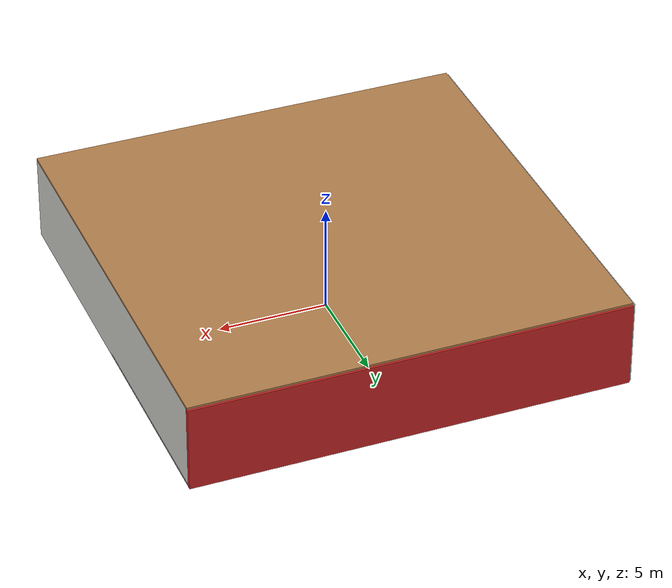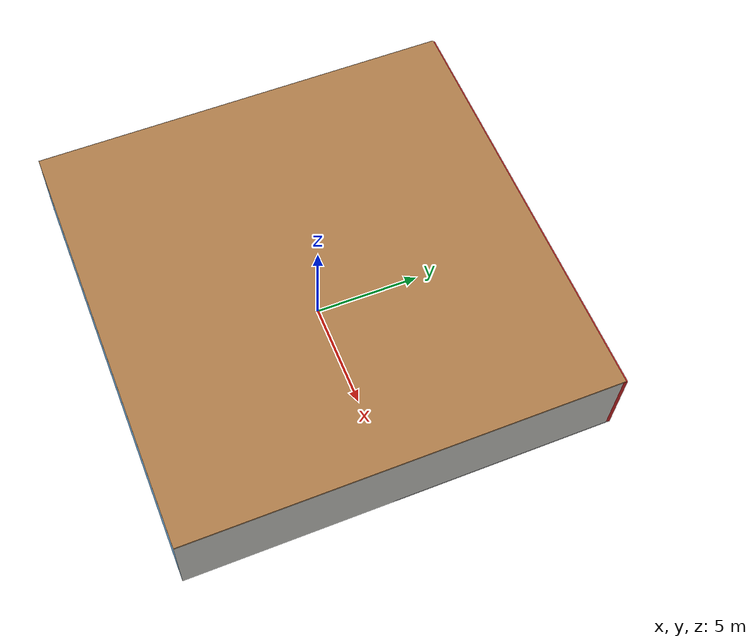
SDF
<sdf version="1.4">
 <world name="default">
  <physics type="ode">
   <max_step_size>0.001</max_step_size>
   <real_time_factor>1</real_time_factor>
   <real_time_update_rate>1000</real_time_update_rate>
   <gravity>0 0 -9.8</gravity>
  </physics>
  <scene><ambient>0.4 0.4 0.4 1</ambient><background>0.7 0.7 0.7 1</background><shadows>1</shadows></scene>
  <model name="Surrounding">
   <static>1</static>
   <link name="Ceiling">
    <collision name="Ceiling_Collision"><geometry><box><size>20 20 0.1</size></box></geometry></collision>
    <visual name="Ceiling_Visual">
     <geometry><box><size>20 20 0.1</size></box></geometry>
     <material>
      <script><uri>file://media/materials/scripts/gazebo.material</uri><name>Gazebo/WoodPallet</name></script>
     </material>
    </visual>
    <pose>0 0 4.05 0 0 0</pose>
   </link>
   <link name="Wall_South">
    <collision name="Wall_South_Collision">
     <geometry><box><size>20 0 4</size></box></geometry>
     <pose>0 0 2 0 -0 0</pose>
    </collision>
    <visual name="Wall_South_Visual">
     <pose>0 0 2 0 -0 0</pose>
     <geometry><box><size>20 0 4</size></box></geometry>
     <material>
      <script><uri>file://media/materials/scripts/gazebo.material</uri><name>Gazebo/SkyBlue</name></script>
     </material>
    </visual>
    <velocity_decay><linear>0</linear><angular>0</angular></velocity_decay>
    <pose>0 -10 0 0 -0 0</pose>
   </link>
   <link name="Wall_East">
    <collision name="Wall_21_Collision">
     <geometry><box><size>20 0 4</size></box></geometry>
     <pose>0 0 2 0 -0 0</pose>
    </collision>
    <visual name="Wall_21_Visual">
     <pose>0 0 2 0 -0 0</pose>
     <geometry><box><size>20 0 4</size></box></geometry>
     <material>
      <script><uri>file://media/materials/scripts/gazebo.material</uri><name>Gazebo/CeilingTiled</name></script>
     </material>
    </visual>
    <velocity_decay><linear>0</linear><angular>0</angular></velocity_decay>
    <pose>10 0 0 0 -0 1.5708</pose>
   </link>
   <link name="Wall_North">
    <collision name="Wall_22_Collision">
     <geometry><box><size>20 0.2 4</size></box></geometry>
     <pose>0 0 2 0 -0 0</pose>
    </collision>
    <visual name="Wall_22_Visual">
     <pose>0 0 2 0 -0 0</pose>
     <geometry><box><size>20 0.2 4</size></box></geometry>
     <material>
      <script><uri>file://media/materials/scripts/gazebo.material</uri><name>Gazebo/RedGlow</name></script>
     </material>
    </visual>
    <velocity_decay><linear>0</linear><angular>0</angular></velocity_decay>
    <pose>0 10 0 0 -0 0</pose>
   </link>
   <link name="Wall_West">
    <collision name="Wall_23_Collision">
     <geometry><box><size>20 0.2 4</size></box></geometry>
     <pose>0 0 2 0 -0 0</pose>
    </collision>
    <visual name="Wall_23_Visual">
     <pose>0 0 2 0 -0 0</pose>
     <geometry><box><size>20 0.2 4</size></box></geometry>
     <material>
      <script><uri>file://media/materials/scripts/gazebo.material</uri><name>Gazebo/Pioneer2Body</name></script>
     </material>
    </visual>
    <velocity_decay><linear>0</linear><angular>0</angular></velocity_decay>
    <pose>-10 0 0 0 0 -1.5708</pose>
   </link>
   <link name="Ground_link">
    <collision name="collision">
     <pose>0 0 .05 0 -0 0</pose>
     <geometry><box><size>20 20 0.1</size></box></geometry>
    </collision>
    <visual name="visual">
     <pose>0 0 .05 0 -0 0</pose>
     <geometry><box><size>20 20 0.1</size></box></geometry>
     <material>
      <script><uri>file://media/materials/scripts/gazebo.material</uri><name>Gazebo/FlatBlack</name></script>
     </material>
    </visual>
   </link>
   <static>1</static>
  </model>
  <spherical_coordinates>
   <surface_model>EARTH_WGS84</surface_model>
   <latitude_deg>0</latitude_deg>
   <longitude_deg>0</longitude_deg>
   <elevation>0</elevation>
   <heading_deg>0</heading_deg>
  </spherical_coordinates>
  <light name="lightball_0" type="diffuse">
   <diffuse>0.8 0.8 0.8 1</diffuse>
   <specular>0.2 0.2 0.2 1</specular>
   <attenuation>
    <range>100</range>
    <constant>0.7</constant>
    <linear>0.01</linear>
    <quadratic>0.001</quadratic>
   </attenuation>
   <direction>-0.5 0.1 -0.9</direction>
   <pose>-1.30517044287 5.39335768544 2.71936536785 0 0 0</pose>
  </light>
  <light name="lightball_1" type="diffuse">
   <diffuse>0.8 0.8 0.8 1</diffuse>
   <specular>0.2 0.2 0.2 1</specular>
   <attenuation>
    <range>100</range>
    <constant>0.7</constant>
    <linear>0.01</linear>
    <quadratic>0.001</quadratic>
   </attenuation>
   <direction>-0.5 0.1 -0.9</direction>
   <pose>5.10721324461 1.65810136855 3.15197757252 0 0 0</pose>
  </light>
  <light name="lightball_2" type="diffuse">
   <diffuse>0.8 0.8 0.8 1</diffuse>
   <specular>0.2 0.2 0.2 1</specular>
   <attenuation>
    <range>100</range>
    <constant>0.7</constant>
    <linear>0.01</linear>
    <quadratic>0.001</quadratic>
   </attenuation>
   <direction>-0.5 0.1 -0.9</direction>
   <pose>-5.5797378693 -7.23153667387 1.89212235658 0 0 0</pose>
  </light>
  <light name="lightball_3" type="diffuse">
   <diffuse>0.8 0.8 0.8 1</diffuse>
   <specular>0.2 0.2 0.2 1</specular>
   <attenuation>
    <range>100</range>
    <constant>0.7</constant>
    <linear>0.01</linear>
    <quadratic>0.001</quadratic>
   </attenuation>
   <direction>-0.5 0.1 -0.9</direction>
   <pose>1.7280788027 6.2868799436 2.3721704316 0 0 0</pose>
  </light>
  <light name="lightball_4" type="diffuse">
   <diffuse>0.8 0.8 0.8 1</diffuse>
   <specular>0.2 0.2 0.2 1</specular>
   <attenuation>
    <range>100</range>
    <constant>0.7</constant>
    <linear>0.01</linear>
    <quadratic>0.001</quadratic>
   </attenuation>
   <direction>-0.5 0.1 -0.9</direction>
   <pose>0.897374109227 1.88057798072 1.86828746551 0 0 0</pose>
  </light>
  <light name="lightball_5" type="diffuse">
   <diffuse>0.8 0.8 0.8 1</diffuse>
   <specular>0.2 0.2 0.2 1</specular>
   <attenuation>
    <range>100</range>
    <constant>0.7</constant>
    <linear>0.01</linear>
    <quadratic>0.001</quadratic>
   </attenuation>
   <direction>-0.5 0.1 -0.9</direction>
   <pose>7.62526136732 -8.97803075128 2.84539219873 0 0 0</pose>
  </light>
  <light name="lightball_6" type="diffuse">
   <diffuse>0.8 0.8 0.8 1</diffuse>
   <specular>0.2 0.2 0.2 1</specular>
   <attenuation>
    <range>100</range>
    <constant>0.7</constant>
    <linear>0.01</linear>
    <quadratic>0.001</quadratic>
   </attenuation>
   <direction>-0.5 0.1 -0.9</direction>
   <pose>-2.97698209907 0.296606696852 1.8621144998 0 0 0</pose>
  </light>
  <light name="lightball_7" type="diffuse">
   <diffuse>0.8 0.8 0.8 1</diffuse>
   <specular>0.2 0.2 0.2 1</specular>
   <attenuation>
    <range>100</range>
    <constant>0.7</constant>
    <linear>0.01</linear>
    <quadratic>0.001</quadratic>
   </attenuation>
   <direction>-0.5 0.1 -0.9</direction>
   <pose>9.89245614419 3.65339087445 2.88866709849 0 0 0</pose>
  </light>
  <include><uri>model://table</uri><pose>-2.41220694267 6.83701505395 0 0 0 1.02486689538</pose></include>
  <include>
   <uri>model://construction_cone</uri>
   <pose>1.68968052481 1.71481911012 0 0 0 1.04915119451</pose>
  </include>
  <include>
   <uri>model://construction_cone</uri>
   <pose>1.66141971583 7.10503624542 0 0 0 2.95412350021</pose>
  </include>
  <include>
   <uri>model://robocup_3Dsim_goal</uri>
   <pose>4.65334208181 -1.45389704273 0 0 0 0.593611477301</pose>
  </include>
  <include><uri>model://textured_shapes</uri><pose>5.53199683858 5.045384437 0 0 0 3.1031015443</pose></include>
  <include><uri>model://table</uri><pose>4.61485149924 7.30000941195 0 0 0 0.572846139543</pose></include>
 </world>
</sdf>

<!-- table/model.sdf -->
<sdf version="1.5">
  <model name="table">
    <static>true</static>
    <link name="link">
      <collision name="surface">
        <pose>0 0 1.0 0 0 0</pose>
        <geometry>
          <box>
            <size>1.5 0.8 0.03</size>
          </box>
        </geometry>
        <surface>
          <friction>
            <ode>
              <mu>0.6</mu>
              <mu2>0.6</mu2>
            </ode>
          </friction>
        </surface>
      </collision>
      <visual name="visual1">
        <pose>0 0 1.0 0 0 0</pose>
        <geometry>
          <box>
            <size>1.5 0.8 0.03</size>
          </box>
        </geometry>
        <material>
          <script>
            <uri>model://media/materials/scripts/gazebo.material</uri>
            <name>Gazebo/Wood</name>
          </script>
        </material>
      </visual>
      <collision name="front_left_leg">
        <pose>0.68 0.38 0.5 0 0 0</pose>
        <geometry>
          <cylinder>
            <radius>0.02</radius>
            <length>1.0</length>
          </cylinder>
        </geometry>
      </collision>
      <visual name="front_left_leg">
        <pose>0.68 0.38 0.5 0 0 0</pose>
        <geometry>
          <cylinder>
            <radius>0.02</radius>
            <length>1.0</length>
          </cylinder>
        </geometry>
        <material>
          <script>
            <uri>model://media/materials/scripts/gazebo.material</uri>
            <name>Gazebo/Grey</name>
          </script>
        </material>
      </visual>
      <collision name="front_right_leg">
        <pose>0.68 -0.38 0.5 0 0 0</pose>
        <geometry>
          <cylinder>
            <radius>0.02</radius>
            <length>1.0</length>
          </cylinder>
        </geometry>
      </collision>
      <visual name="front_right_leg">
        <pose>0.68 -0.38 0.5 0 0 0</pose>
        <geometry>
          <cylinder>
            <radius>0.02</radius>
            <length>1.0</length>
          </cylinder>
        </geometry>
        <material>
          <script>
            <uri>model://media/materials/scripts/gazebo.material</uri>
            <name>Gazebo/Grey</name>
          </script>
        </material>
      </visual>
      <collision name="back_right_leg">
        <pose>-0.68 -0.38 0.5 0 0 0</pose>
        <geometry>
          <cylinder>
            <radius>0.02</radius>
            <length>1.0</length>
          </cylinder>
        </geometry>
      </collision>
      <visual name="back_right_leg">
        <pose>-0.68 -0.38 0.5 0 0 0</pose>
        <geometry>
          <cylinder>
            <radius>0.02</radius>
            <length>1.0</length>
          </cylinder>
        </geometry>
        <material>
          <script>
            <uri>model://media/materials/scripts/gazebo.material</uri>
            <name>Gazebo/Grey</name>
          </script>
        </material>
      </visual>
      <collision name="back_left_leg">
        <pose>-0.68 0.38 0.5 0 0 0</pose>
        <geometry>
          <cylinder>
            <radius>0.02</radius>
            <length>1.0</length>
          </cylinder>
        </geometry>
      </collision>
      <visual name="back_left_leg">
        <pose>-0.68 0.38 0.5 0 0 0</pose>
        <geometry>
          <cylinder>
            <radius>0.02</radius>
            <length>1.0</length>
          </cylinder>
        </geometry>
        <material>
          <script>
            <uri>model://media/materials/scripts/gazebo.material</uri>
            <name>Gazebo/Grey</name>
          </script>
        </material>
      </visual>
    </link>
  </model>
</sdf>

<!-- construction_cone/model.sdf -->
<sdf version="1.5">
  <model name="Construction Cone">
    <link name="link">
      <collision name="collision">
        <geometry>
          <mesh>
            <scale>10 10 10</scale>
            <uri>file://isr-testbed/construction_cone/meshes/construction_cone.dae</uri>
          </mesh>
        </geometry>
      </collision>
      <visual name="visual">
        <geometry>
          <mesh>
            <scale>10 10 10</scale>
            <uri>file://isr-testbed/construction_cone/meshes/construction_cone.dae</uri>
          </mesh>
        </geometry>
      </visual>
    </link>
  </model>
</sdf>

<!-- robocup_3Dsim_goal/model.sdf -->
<sdf version="1.5">
  <model name="robocup_3d_goal">
    <static>true</static>
    <link name="left_post">
      <pose>0 1.05 0.45 0 0 0</pose>
      <collision name="collision">
        <geometry>
          <cylinder>
            <radius>0.05</radius>
            <length>0.9</length>
          </cylinder>
        </geometry>
      </collision>
      <visual name="visual">
        <geometry>
          <cylinder>
            <radius>0.05</radius>
            <length>0.9</length>
          </cylinder>
        </geometry>
        <material>
          <script>
            <uri>file://media/materials/scripts/gazebo.material</uri>
            <name>Gazebo/ZincYellow</name>
          </script>
        </material>
      </visual>
    </link>
    <link name="left_support_horiz_lower">
      <pose>0.30 1.05 0.01 0 0 0</pose>
      <collision name="collision">
        <geometry>
          <box>
            <size>0.50 0.02 0.02</size>
          </box>
        </geometry>
      </collision>
      <visual name="visual">
        <geometry>
          <box>
            <size>0.50 0.02 0.02</size>
          </box>
        </geometry>
        <material>
          <script>
            <uri>file://media/materials/scripts/gazebo.material</uri>
            <name>Gazebo/White</name>
          </script>
        </material>
      </visual>
    </link>
    <link name="left_support_horiz_upper">
      <pose>0.30 1.05 0.79 0 0 0</pose>
      <collision name="collision">
        <geometry>
          <box>
            <size>0.50 0.02 0.02</size>
          </box>
        </geometry>
      </collision>
      <visual name="visual">
        <geometry>
          <box>
            <size>0.50 0.02 0.02</size>
          </box>
        </geometry>
        <material>
          <script>
            <uri>file://media/materials/scripts/gazebo.material</uri>
            <name>Gazebo/White</name>
          </script>
        </material>
      </visual>
    </link>
    <link name="left_support_vertical">
      <pose>0.56 1.05 0.4 0 1.5708 0</pose>
      <collision name="collision">
        <geometry>
          <box>
            <size>0.80 0.02 0.02</size>
          </box>
        </geometry>
      </collision>
      <visual name="visual">
        <geometry>
          <box>
            <size>0.80 0.02 0.02</size>
          </box>
        </geometry>
        <material>
          <script>
            <uri>file://media/materials/scripts/gazebo.material</uri>
            <name>Gazebo/White</name>
          </script>
        </material>
      </visual>
    </link>
    <link name="right_support_horiz_lower">
      <pose>0.30 -1.05 0.01 0 0 0</pose>
      <collision name="collision">
        <geometry>
          <box>
            <size>0.50 0.02 0.02</size>
          </box>
        </geometry>
      </collision>
      <visual name="visual">
        <geometry>
          <box>
            <size>0.50 0.02 0.02</size>
          </box>
        </geometry>
        <material>
          <script>
            <uri>file://media/materials/scripts/gazebo.material</uri>
            <name>Gazebo/White</name>
          </script>
        </material>
      </visual>
    </link>
    <link name="right_support_horiz_upper">
      <pose>0.30 -1.05 0.79 0 0 0</pose>
      <collision name="collision">
        <geometry>
          <box>
            <size>0.50 0.02 0.02</size>
          </box>
        </geometry>
      </collision>
      <visual name="visual">
        <geometry>
          <box>
            <size>0.50 0.02 0.02</size>
          </box>
        </geometry>
        <material>
          <script>
            <uri>file://media/materials/scripts/gazebo.material</uri>
            <name>Gazebo/White</name>
          </script>
        </material>
      </visual>
    </link>
    <link name="right_support_vertical">
      <pose>0.56 -1.05 0.4 0 1.5708 0</pose>
      <collision name="collision">
        <geometry>
          <box>
            <size>0.80 0.02 0.02</size>
          </box>
        </geometry>
      </collision>
      <visual name="visual">
        <geometry>
          <box>
            <size>0.80 0.02 0.02</size>
          </box>
        </geometry>
        <material>
          <script>
            <uri>file://media/materials/scripts/gazebo.material</uri>
            <name>Gazebo/White</name>
          </script>
        </material>
      </visual>
    </link>
    <link name="center_support_horiz_lower">
      <pose>0.56 0 0.01 0 1.5708 0</pose>
      <collision name="collision">
        <geometry>
          <box>
            <size>0.02 2.08 0.02</size>
          </box>
        </geometry>
      </collision>
      <visual name="visual">
        <geometry>
          <box>
            <size>0.02 2.08 0.02</size>
          </box>
        </geometry>
        <material>
          <script>
            <uri>file://media/materials/scripts/gazebo.material</uri>
            <name>Gazebo/White</name>
          </script>
        </material>
      </visual>
    </link>
    <link name="center_support_horiz_upper">
      <pose>0.56 0 0.79 0 1.5708 0</pose>
      <collision name="collision">
        <geometry>
          <box>
            <size>0.02 2.08 0.02</size>
          </box>
        </geometry>
      </collision>
      <visual name="visual">
        <geometry>
          <box>
            <size>0.02 2.08 0.02</size>
          </box>
        </geometry>
        <material>
          <script>
            <uri>file://media/materials/scripts/gazebo.material</uri>
            <name>Gazebo/White</name>
          </script>
        </material>
      </visual>
    </link>
    <link name="right_post">
      <pose>0 -1.05 0.45 0 0 0</pose>
      <collision name="collision">
        <geometry>
          <cylinder>
            <radius>0.05</radius>
            <length>0.9</length>
          </cylinder>
        </geometry>
      </collision>
      <visual name="visual">
        <geometry>
          <cylinder>
            <radius>0.05</radius>
            <length>0.9</length>
          </cylinder>
        </geometry>
        <material>
          <script>
            <uri>file://media/materials/scripts/gazebo.material</uri>
            <name>Gazebo/ZincYellow</name>
          </script>
        </material>
      </visual>
    </link>
    <link name="crossbar">
      <pose>0 0 0.85 1.57 1.57 0</pose>
      <collision name="collision">
        <geometry>
          <cylinder>
            <radius>0.05</radius>
            <length>2.0</length>
          </cylinder>
        </geometry>
      </collision>
      <visual name="visual">
        <geometry>
          <cylinder>
            <radius>0.05</radius>
            <length>2.0</length>
          </cylinder>
        </geometry>
        <material>
          <script>
            <uri>file://media/materials/scripts/gazebo.material</uri>
            <name>Gazebo/ZincYellow</name>
          </script>
        </material>
      </visual>
    </link>
    <link name="center_net">
      <pose>0.56 0 0.40 0 0 0</pose>
      <collision name="collision">
        <geometry>
          <box>
            <size>0.01 2.1 0.80</size>
          </box>
        </geometry>
      </collision>
      <visual name="visual">
        <geometry>
          <box>
            <size>0.01 2.1 0.80</size>
          </box>
        </geometry>
        <material>
          <script>
            <uri>model://../model_source/models/robocup09_spl_field/materials/scripts/</uri>
            <uri>model://../model_source/models/robocup09_spl_field/materials/textures/</uri>
            <name>RoboCup/Net</name>
          </script>
        </material>
      </visual>
    </link>
    <link name="left_net">
      <pose>0.30 1.05 0.40 0 0 0</pose>
      <collision name="collision">
        <geometry>
          <box>
            <size>0.50 0.01 0.76</size>
          </box>
        </geometry>
      </collision>
      <visual name="visual">
        <geometry>
          <box>
            <size>0.50 0.01 0.76</size>
          </box>
        </geometry>
        <material>
          <script>
            <uri>model://../model_source/models/robocup09_spl_field/materials/scripts/</uri>
            <uri>model://../model_source/models/robocup09_spl_field/materials/textures/</uri>
            <name>RoboCup/Net</name>
          </script>
        </material>
      </visual>
    </link>
    <link name="right_net">
      <pose>0.30 -1.05 0.40 0 0 0</pose>
      <collision name="collision">
        <geometry>
          <box>
            <size>0.50 0.01 0.76</size>
          </box>
        </geometry>
      </collision>
      <visual name="visual">
        <geometry>
          <box>
            <size>0.50 0.01 0.76</size>
          </box>
        </geometry>
        <material>
          <script>
            <uri>model://../model_source/models/robocup09_spl_field/materials/scripts/</uri>
            <uri>model://../model_source/models/robocup09_spl_field/materials/textures/</uri>
            <name>RoboCup/Net</name>
          </script>
        </material>
      </visual>
    </link>
  </model>
</sdf>

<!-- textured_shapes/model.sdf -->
<sdf version="1.6">
  <model name="textured_shapes">
    <pose>0 0 0.5 0 0 0</pose>
    <link name="box">
      <pose>0 -1.5 0 0 0 0</pose>
      <collision name="collision">
        <geometry>
          <box>
            <size>1 1 1</size>
          </box>
        </geometry>
      </collision>
      <visual name="visual">
        <geometry>
          <box>
            <size>1 1 1</size>
          </box>
        </geometry>
        <material>
          <script>
            <uri>model://../model_source/models/textured_shapes/materials/scripts</uri>
            <uri>model://../model_source/models/textured_shapes/materials/textures</uri>
            <name>TexturedShape/Squares</name>
          </script>
        </material>
      </visual>
    </link>
    <link name="sphere">
      <collision name="collision">
        <geometry>
          <sphere>
            <radius>0.5</radius>
          </sphere>
        </geometry>
      </collision>
      <visual name="visual">
        <geometry>
          <sphere>
            <radius>0.5</radius>
          </sphere>
        </geometry>
        <material>
          <script>
            <uri>model://../model_source/models/textured_shapes/materials/scripts</uri>
            <uri>model://../model_source/models/textured_shapes/materials/textures</uri>
            <name>TexturedShape/Squares</name>
          </script>
        </material>
      </visual>
    </link>
    <link name="cylinder">
      <pose>0 1.5 0 0 0 0</pose>
      <collision name="collision">
        <geometry>
          <cylinder>
            <radius>0.5</radius>
            <length>1</length>
          </cylinder>
        </geometry>
      </collision>
      <visual name="visual">
        <geometry>
          <cylinder>
            <radius>0.5</radius>
            <length>1</length>
          </cylinder>
        </geometry>
        <material>
          <script>
            <uri>model://../model_source/models/textured_shapes/materials/scripts</uri>
            <uri>model://../model_source/models/textured_shapes/materials/textures</uri>
            <name>TexturedShape/Squares</name>
          </script>
        </material>
      </visual>
    </link>
  </model>
</sdf>
